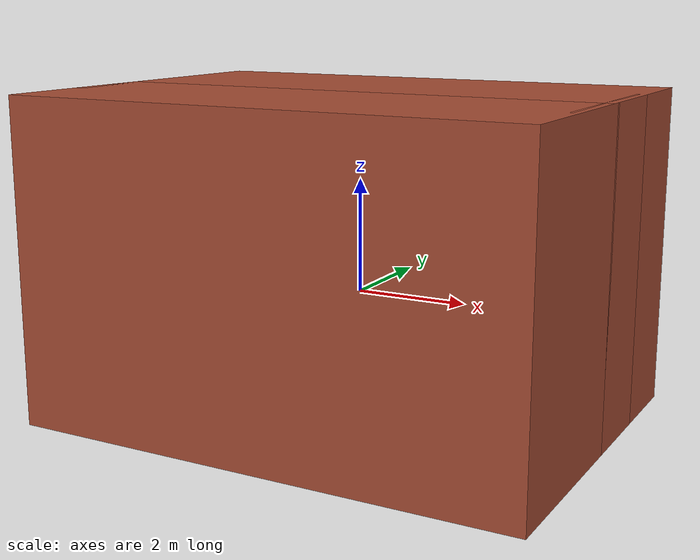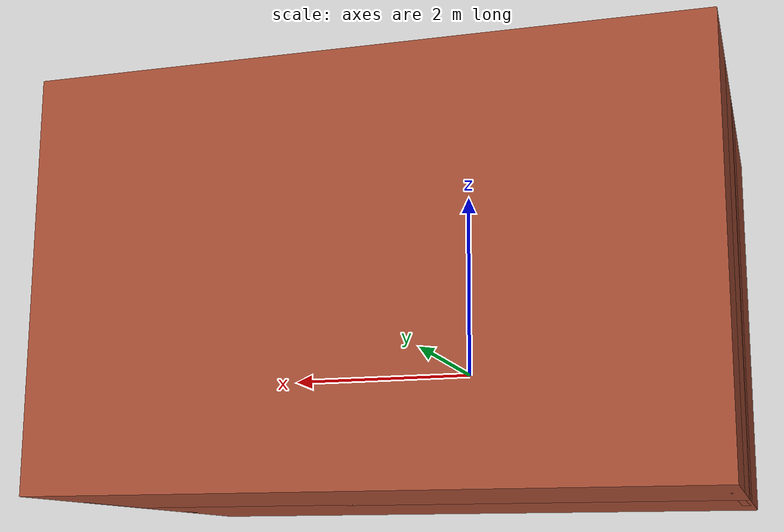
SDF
<?xml version='1.0'?>
<sdf version='1.6'>
  <model name='wall_block_2'>
    <pose frame=''>1.185 -2.465 0 0 -0 0</pose>
    <link name='Wall_0'>
      <collision name='Wall_0_Collision'>
        <geometry>
          <box>
            <size>8 3 5</size>
          </box>
        </geometry>
        <pose frame=''>0 0 1.25 0 -0 0</pose>
      </collision>
      <visual name='Wall_0_Visual'>
        <pose frame=''>0 0 1.25 0 -0 0</pose>
        <geometry>
          <box>
            <size>8 3 5</size>
          </box>
        </geometry>
        <material>
          <script>
            <uri>file://media/materials/scripts/gazebo.material</uri>
            <name>Gazebo/Bricks</name>
          </script>
          <ambient>1 1 1 1</ambient>
        </material>
        <meta>
          <layer>0</layer>
        </meta>
      </visual>
      <pose frame=''>-0 1.425 0 0 -0 0</pose>
    </link>
    <link name='Wall_1'>
      <collision name='Wall_1_Collision'>
        <geometry>
          <box>
            <size>3 0.15 5</size>
          </box>
        </geometry>
        <pose frame=''>0 0 1.25 0 -0 0</pose>
      </collision>
      <visual name='Wall_1_Visual'>
        <pose frame=''>0 0 1.25 0 -0 0</pose>
        <geometry>
          <box>
            <size>3 0.15 5</size>
          </box>
        </geometry>
        <material>
          <script>
            <uri>file://media/materials/scripts/gazebo.material</uri>
            <name>Gazebo/Bricks</name>
          </script>
          <ambient>1 1 1 1</ambient>
        </material>
        <meta>
          <layer>0</layer>
        </meta>
      </visual>
      <pose frame=''>3.925 0 0 0 -0 -1.5708</pose>
    </link>
    <link name='Wall_2'>
      <collision name='Wall_2_Collision'>
        <geometry>
          <box>
            <size>8 3 5</size>
          </box>
        </geometry>
        <pose frame=''>0 0 1.25 0 -0 0</pose>
      </collision>
      <visual name='Wall_2_Visual'>
        <pose frame=''>0 0 1.25 0 -0 0</pose>
        <geometry>
          <box>
            <size>8 3 5</size>
          </box>
        </geometry>
        <material>
          <script>
            <uri>file://media/materials/scripts/gazebo.material</uri>
            <name>Gazebo/Bricks</name>
          </script>
          <ambient>1 1 1 1</ambient>
        </material>
        <meta>
          <layer>0</layer>
        </meta>
      </visual>
      <pose frame=''>-0 -1.425 0 0 -0 3.14159</pose>
    </link>
    <link name='Wall_3'>
      <collision name='Wall_3_Collision'>
        <geometry>
          <box>
            <size>3 0.15 5</size>
          </box>
        </geometry>
        <pose frame=''>0 0 1.25 0 -0 0</pose>
      </collision>
      <visual name='Wall_3_Visual'>
        <pose frame=''>0 0 1.25 0 -0 0</pose>
        <geometry>
          <box>
            <size>3 0.15 5</size>
          </box>
        </geometry>
        <material>
          <script>
            <uri>file://media/materials/scripts/gazebo.material</uri>
            <name>Gazebo/Bricks</name>
          </script>
          <ambient>1 1 1 1</ambient>
        </material>
        <meta>
          <layer>0</layer>
        </meta>
      </visual>
      <pose frame=''>-3.925 0 0 0 -0 1.5708</pose>
    </link>
    <static>1</static>
  </model>
</sdf>
